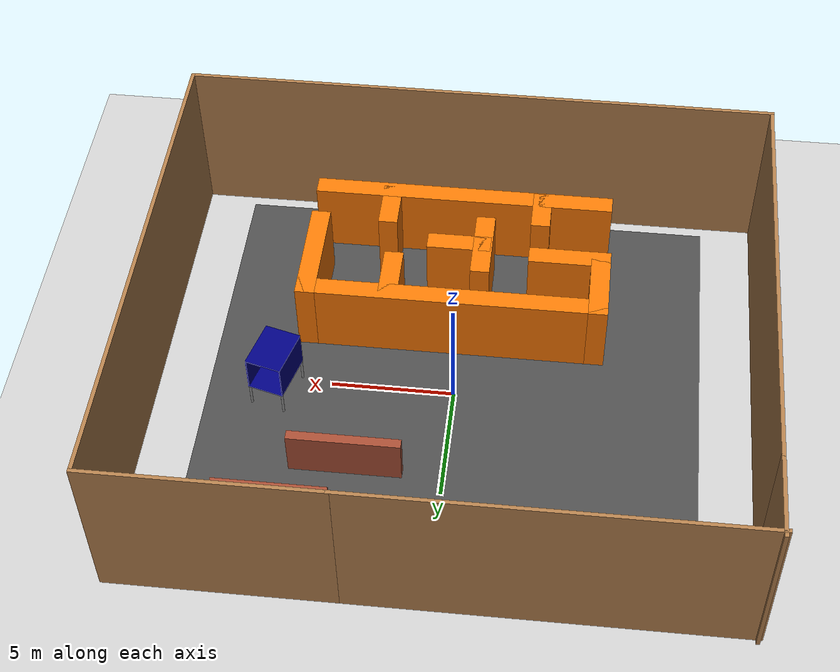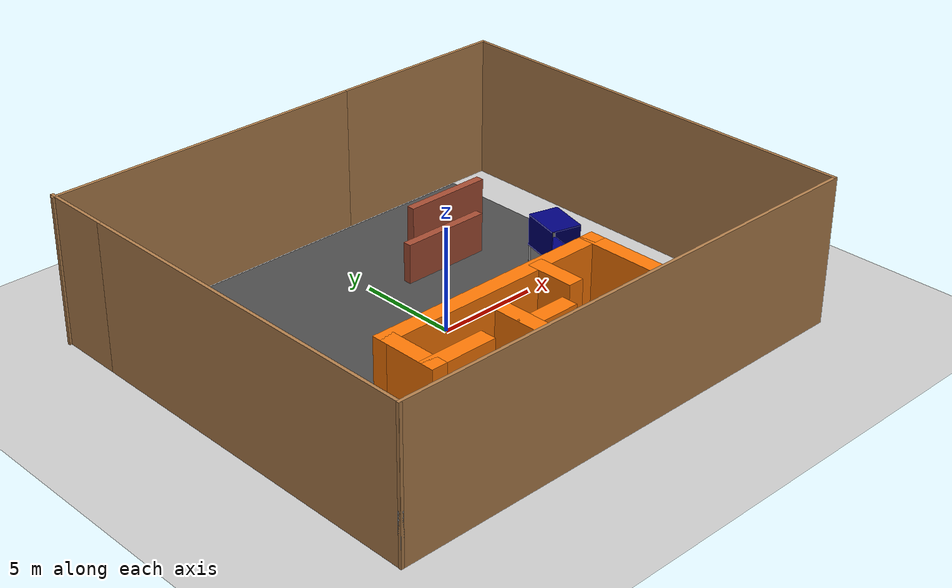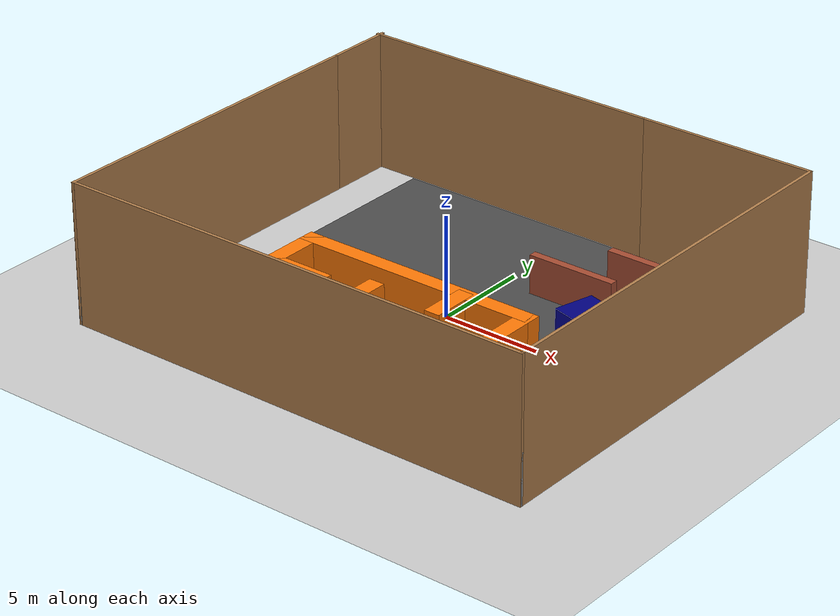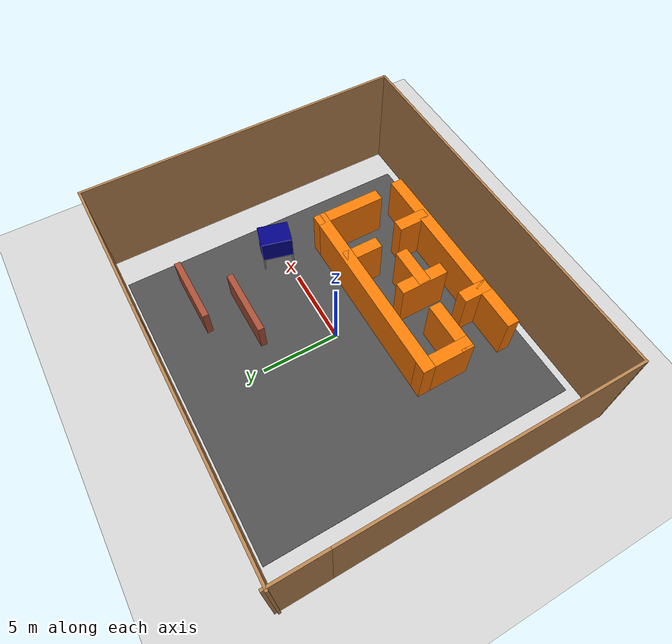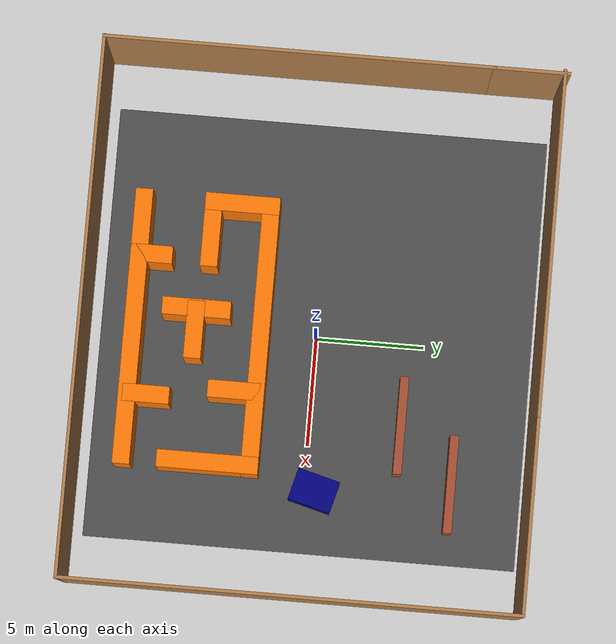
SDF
<sdf version="1.6">
 <world name="default">
  <light name="sun" type="directional">
   <pose>0 0 10 0 -0 0</pose>
   <diffuse>0.8 0.8 0.8 1</diffuse>
   <specular>0.2 0.2 0.2 1</specular>
   <attenuation>
    <range>1000</range>
    <constant>0.9</constant>
    <linear>0.01</linear>
    <quadratic>0.001</quadratic>
   </attenuation>
   <direction>-0.5 0.1 -0.9</direction>
  </light>
  <model name="ground_plane">
   <static>1</static>
   <link name="link">
    <collision name="collision">
     <geometry><plane><normal>0 0 1</normal><size>100 100</size></plane></geometry>
     <surface><friction><ode><mu>100</mu><mu2>50</mu2></ode></friction></surface>
    </collision>
    <visual name="visual">
     <cast_shadows>0</cast_shadows>
     <geometry><plane><normal>0 0 1</normal><size>100 100</size></plane></geometry>
     <material>
      <script><uri>file://media/materials/scripts/gazebo.material</uri><name>Gazebo/Grey</name></script>
     </material>
    </visual>
   </link>
  </model>
  <model name="asphalt_plane">
   <static>1</static>
   <link name="link">
    <collision name="collision"><geometry><box><size>20 20 0.1</size></box></geometry></collision>
    <visual name="visual">
     <cast_shadows>0</cast_shadows>
     <geometry><box><size>20 20 0.1</size></box></geometry>
     <material>
      <script>
       <uri>model://asphalt_plane/materials/scripts</uri>
       <uri>model://asphalt_plane/materials/textures</uri>
       <name>vrc/asphalt</name>
      </script>
     </material>
    </visual>
   </link>
  </model>
  <physics name="default_physics" default="0" type="ode">
   <ode>
    <solver>
     <type>quick</type>
     <iters>10</iters>
     <sor>1.3</sor>
     <use_dynamic_moi_rescaling>0</use_dynamic_moi_rescaling>
    </solver>
    <constraints>
     <cfm>0</cfm>
     <erp>0.2</erp>
     <contact_max_correcting_vel>100</contact_max_correcting_vel>
     <contact_surface_layer>0.001</contact_surface_layer>
    </constraints>
   </ode>
   <max_step_size>0.004</max_step_size>
   <real_time_factor>1</real_time_factor>
   <real_time_update_rate>250</real_time_update_rate>
  </physics>
  <gravity>0 0 -9.8066</gravity>
  <magnetic_field>6e-06 2.3e-05 -4.2e-05</magnetic_field>
  <atmosphere type="adiabatic"/>
  <scene><ambient>0.4 0.4 0.4 1</ambient><background>0.7 0.7 0.7 1</background><shadows>1</shadows></scene>
  <spherical_coordinates>
   <surface_model>EARTH_WGS84</surface_model>
   <latitude_deg>0</latitude_deg>
   <longitude_deg>0</longitude_deg>
   <elevation>0</elevation>
   <heading_deg>0</heading_deg>
  </spherical_coordinates>
  <model name="A_walls">
   <pose>3.82989 4.22347 0 0 -0 0</pose>
   <link name="Wall_1">
    <collision name="Wall_1_Collision">
     <geometry><box><size>4.5 0.4 2</size></box></geometry>
     <pose>0 0 1 0 -0 0</pose>
    </collision>
    <visual name="Wall_1_Visual">
     <pose>0 0 1 0 -0 0</pose>
     <geometry><box><size>4.5 0.4 2</size></box></geometry>
     <material>
      <script><uri>file://media/materials/scripts/gazebo.material</uri><name>Gazebo/Bricks</name></script>
      <ambient>1 1 1 1</ambient>
     </material>
     <meta><layer>0</layer></meta>
    </visual>
   </link>
   <link name="Wall_2">
    <collision name="Wall_2_Collision">
     <geometry><box><size>4.5 0.4 2</size></box></geometry>
     <pose>0 0 1 0 -0 0</pose>
    </collision>
    <visual name="Wall_2_Visual">
     <pose>0 0 1 0 -0 0</pose>
     <geometry><box><size>4.5 0.4 2</size></box></geometry>
     <material>
      <script><uri>file://media/materials/scripts/gazebo.material</uri><name>Gazebo/Bricks</name></script>
      <ambient>1 1 1 1</ambient>
     </material>
     <meta><layer>0</layer></meta>
    </visual>
    <pose>2.5 2.5 0 0 -0 0</pose>
   </link>
   <static>1</static>
  </model>
  <model name="B_tube">
   <link name="link_0">
    <inertial>
     <mass>1</mass>
     <inertia><ixx>0.145833</ixx><ixy>0</ixy><ixz>0</ixz><iyy>0.145833</iyy><iyz>0</iyz><izz>0.125</izz></inertia>
    </inertial>
    <pose>-0.7 -0.95 -0.645 0 -0 0</pose>
    <visual name="visual">
     <geometry><cylinder><radius>0.05</radius><length>1</length></cylinder></geometry>
     <material>
      <lighting>1</lighting>
      <script><uri>file://media/materials/scripts/gazebo.material</uri><name>Gazebo/Grey</name></script>
      <shader type="vertex"><normal_map>__default__</normal_map></shader>
      <ambient>0.3 0.3 0.3 1</ambient>
      <diffuse>0.7 0.7 0.7 1</diffuse>
      <specular>0.01 0.01 0.01 1</specular>
      <emissive>0 0 0 1</emissive>
     </material>
    </visual>
    <collision name="collision">
     <geometry><cylinder><radius>0.05</radius><length>1</length></cylinder></geometry>
     <surface>
      <friction>
       <ode><mu>1</mu><mu2>1</mu2><fdir1>0 0 0</fdir1><slip1>0</slip1><slip2>0</slip2></ode>
       <torsional>
        <coefficient>1</coefficient>
        <patch_radius>0</patch_radius>
        <surface_radius>0</surface_radius>
        <use_patch_radius>1</use_patch_radius>
        <ode><slip>0</slip></ode>
       </torsional>
      </friction>
      <bounce><restitution_coefficient>0</restitution_coefficient><threshold>1e+06</threshold></bounce>
      <contact>
       <collide_without_contact>0</collide_without_contact>
       <collide_without_contact_bitmask>1</collide_without_contact_bitmask>
       <collide_bitmask>1</collide_bitmask>
       <ode>
        <soft_cfm>0</soft_cfm>
        <soft_erp>0.2</soft_erp>
        <kp>1e+13</kp>
        <kd>1</kd>
        <max_vel>0.01</max_vel>
        <min_depth>0</min_depth>
       </ode>
       <bullet>
        <split_impulse>1</split_impulse>
        <split_impulse_penetration_threshold>-0.01</split_impulse_penetration_threshold>
        <soft_cfm>0</soft_cfm>
        <soft_erp>0.2</soft_erp>
        <kp>1e+13</kp>
        <kd>1</kd>
       </bullet>
      </contact>
     </surface>
    </collision>
   </link>
   <link name="link_0_clone">
    <inertial>
     <mass>1</mass>
     <inertia><ixx>0.145833</ixx><ixy>0</ixy><ixz>0</ixz><iyy>0.145833</iyy><iyz>0</iyz><izz>0.125</izz></inertia>
    </inertial>
    <pose>0.7 -0.95 -0.645 0 -0 0</pose>
    <visual name="visual">
     <geometry><cylinder><radius>0.05</radius><length>1</length></cylinder></geometry>
     <material>
      <lighting>1</lighting>
      <script><uri>file://media/materials/scripts/gazebo.material</uri><name>Gazebo/Grey</name></script>
      <shader type="vertex"><normal_map>__default__</normal_map></shader>
      <ambient>0.3 0.3 0.3 1</ambient>
      <diffuse>0.7 0.7 0.7 1</diffuse>
      <specular>0.01 0.01 0.01 1</specular>
      <emissive>0 0 0 1</emissive>
     </material>
    </visual>
    <collision name="collision">
     <geometry><cylinder><radius>0.05</radius><length>1</length></cylinder></geometry>
     <surface>
      <friction>
       <ode><mu>1</mu><mu2>1</mu2><fdir1>0 0 0</fdir1><slip1>0</slip1><slip2>0</slip2></ode>
       <torsional>
        <coefficient>1</coefficient>
        <patch_radius>0</patch_radius>
        <surface_radius>0</surface_radius>
        <use_patch_radius>1</use_patch_radius>
        <ode><slip>0</slip></ode>
       </torsional>
      </friction>
      <bounce><restitution_coefficient>0</restitution_coefficient><threshold>1e+06</threshold></bounce>
      <contact>
       <collide_without_contact>0</collide_without_contact>
       <collide_without_contact_bitmask>1</collide_without_contact_bitmask>
       <collide_bitmask>1</collide_bitmask>
       <ode>
        <soft_cfm>0</soft_cfm>
        <soft_erp>0.2</soft_erp>
        <kp>1e+13</kp>
        <kd>1</kd>
        <max_vel>0.01</max_vel>
        <min_depth>0</min_depth>
       </ode>
       <bullet>
        <split_impulse>1</split_impulse>
        <split_impulse_penetration_threshold>-0.01</split_impulse_penetration_threshold>
        <soft_cfm>0</soft_cfm>
        <soft_erp>0.2</soft_erp>
        <kp>1e+13</kp>
        <kd>1</kd>
       </bullet>
      </contact>
     </surface>
    </collision>
   </link>
   <link name="link_0_clone_0">
    <inertial>
     <mass>1</mass>
     <inertia><ixx>0.145833</ixx><ixy>0</ixy><ixz>0</ixz><iyy>0.145833</iyy><iyz>0</iyz><izz>0.125</izz></inertia>
    </inertial>
    <pose>-0.7 0.95 -0.645 0 -0 0</pose>
    <visual name="visual">
     <geometry><cylinder><radius>0.05</radius><length>1</length></cylinder></geometry>
     <material>
      <lighting>1</lighting>
      <script><uri>file://media/materials/scripts/gazebo.material</uri><name>Gazebo/Grey</name></script>
      <shader type="vertex"><normal_map>__default__</normal_map></shader>
      <ambient>0.3 0.3 0.3 1</ambient>
      <diffuse>0.7 0.7 0.7 1</diffuse>
      <specular>0.01 0.01 0.01 1</specular>
      <emissive>0 0 0 1</emissive>
     </material>
    </visual>
    <collision name="collision">
     <geometry><cylinder><radius>0.05</radius><length>1</length></cylinder></geometry>
     <surface>
      <friction>
       <ode><mu>1</mu><mu2>1</mu2><fdir1>0 0 0</fdir1><slip1>0</slip1><slip2>0</slip2></ode>
       <torsional>
        <coefficient>1</coefficient>
        <patch_radius>0</patch_radius>
        <surface_radius>0</surface_radius>
        <use_patch_radius>1</use_patch_radius>
        <ode><slip>0</slip></ode>
       </torsional>
      </friction>
      <bounce><restitution_coefficient>0</restitution_coefficient><threshold>1e+06</threshold></bounce>
      <contact>
       <collide_without_contact>0</collide_without_contact>
       <collide_without_contact_bitmask>1</collide_without_contact_bitmask>
       <collide_bitmask>1</collide_bitmask>
       <ode>
        <soft_cfm>0</soft_cfm>
        <soft_erp>0.2</soft_erp>
        <kp>1e+13</kp>
        <kd>1</kd>
        <max_vel>0.01</max_vel>
        <min_depth>0</min_depth>
       </ode>
       <bullet>
        <split_impulse>1</split_impulse>
        <split_impulse_penetration_threshold>-0.01</split_impulse_penetration_threshold>
        <soft_cfm>0</soft_cfm>
        <soft_erp>0.2</soft_erp>
        <kp>1e+13</kp>
        <kd>1</kd>
       </bullet>
      </contact>
     </surface>
    </collision>
   </link>
   <link name="link_0_clone_1">
    <inertial>
     <mass>1</mass>
     <inertia><ixx>0.145833</ixx><ixy>0</ixy><ixz>0</ixz><iyy>0.145833</iyy><iyz>0</iyz><izz>0.125</izz></inertia>
    </inertial>
    <pose>0.7 0.95 -0.645 0 -0 0</pose>
    <visual name="visual">
     <geometry><cylinder><radius>0.05</radius><length>1</length></cylinder></geometry>
     <material>
      <lighting>1</lighting>
      <script><uri>file://media/materials/scripts/gazebo.material</uri><name>Gazebo/Grey</name></script>
      <shader type="vertex"><normal_map>__default__</normal_map></shader>
      <ambient>0.3 0.3 0.3 1</ambient>
      <diffuse>0.7 0.7 0.7 1</diffuse>
      <specular>0.01 0.01 0.01 1</specular>
      <emissive>0 0 0 1</emissive>
     </material>
    </visual>
    <collision name="collision">
     <geometry><cylinder><radius>0.05</radius><length>1</length></cylinder></geometry>
     <surface>
      <friction>
       <ode><mu>1</mu><mu2>1</mu2><fdir1>0 0 0</fdir1><slip1>0</slip1><slip2>0</slip2></ode>
       <torsional>
        <coefficient>1</coefficient>
        <patch_radius>0</patch_radius>
        <surface_radius>0</surface_radius>
        <use_patch_radius>1</use_patch_radius>
        <ode><slip>0</slip></ode>
       </torsional>
      </friction>
      <bounce><restitution_coefficient>0</restitution_coefficient><threshold>1e+06</threshold></bounce>
      <contact>
       <collide_without_contact>0</collide_without_contact>
       <collide_without_contact_bitmask>1</collide_without_contact_bitmask>
       <collide_bitmask>1</collide_bitmask>
       <ode>
        <soft_cfm>0</soft_cfm>
        <soft_erp>0.2</soft_erp>
        <kp>1e+13</kp>
        <kd>1</kd>
        <max_vel>0.01</max_vel>
        <min_depth>0</min_depth>
       </ode>
       <bullet>
        <split_impulse>1</split_impulse>
        <split_impulse_penetration_threshold>-0.01</split_impulse_penetration_threshold>
        <soft_cfm>0</soft_cfm>
        <soft_erp>0.2</soft_erp>
        <kp>1e+13</kp>
        <kd>1</kd>
       </bullet>
      </contact>
     </surface>
    </collision>
   </link>
   <link name="link_1">
    <inertial>
     <mass>1</mass>
     <inertia>
      <ixx>0.166667</ixx>
      <ixy>0</ixy>
      <ixz>0</ixz>
      <iyy>0.166667</iyy>
      <iyz>0</iyz>
      <izz>0.166667</izz>
     </inertia>
    </inertial>
    <pose>-0 -0 -0.125 0 -0 0</pose>
    <visual name="visual">
     <geometry><box><size>1.5 2 0.04</size></box></geometry>
     <material>
      <lighting>1</lighting>
      <script><uri>file://media/materials/scripts/gazebo.material</uri><name>Gazebo/Grey</name></script>
      <shader type="vertex"><normal_map>__default__</normal_map></shader>
      <ambient>0 0 0.5 1</ambient>
      <diffuse>0.7 0.7 0.7 1</diffuse>
      <specular>0.01 0.01 0.01 1</specular>
      <emissive>0 0 0 1</emissive>
     </material>
    </visual>
    <collision name="collision">
     <geometry><box><size>1.5 2 0.04</size></box></geometry>
     <surface>
      <friction>
       <ode><mu>1</mu><mu2>1</mu2><fdir1>0 0 0</fdir1><slip1>0</slip1><slip2>0</slip2></ode>
       <torsional>
        <coefficient>1</coefficient>
        <patch_radius>0</patch_radius>
        <surface_radius>0</surface_radius>
        <use_patch_radius>1</use_patch_radius>
        <ode><slip>0</slip></ode>
       </torsional>
      </friction>
      <bounce><restitution_coefficient>0</restitution_coefficient><threshold>1e+06</threshold></bounce>
      <contact>
       <collide_without_contact>0</collide_without_contact>
       <collide_without_contact_bitmask>1</collide_without_contact_bitmask>
       <collide_bitmask>1</collide_bitmask>
       <ode>
        <soft_cfm>0</soft_cfm>
        <soft_erp>0.2</soft_erp>
        <kp>1e+13</kp>
        <kd>1</kd>
        <max_vel>0.01</max_vel>
        <min_depth>0</min_depth>
       </ode>
       <bullet>
        <split_impulse>1</split_impulse>
        <split_impulse_penetration_threshold>-0.01</split_impulse_penetration_threshold>
        <soft_cfm>0</soft_cfm>
        <soft_erp>0.2</soft_erp>
        <kp>1e+13</kp>
        <kd>1</kd>
       </bullet>
      </contact>
     </surface>
    </collision>
   </link>
   <link name="link_1_clone">
    <inertial>
     <mass>1</mass>
     <inertia>
      <ixx>0.166667</ixx>
      <ixy>0</ixy>
      <ixz>0</ixz>
      <iyy>0.166667</iyy>
      <iyz>0</iyz>
      <izz>0.166667</izz>
     </inertia>
    </inertial>
    <pose>0 -0 1.415 0 -0 0</pose>
    <visual name="visual">
     <geometry><box><size>1.5 2 0.04</size></box></geometry>
     <material>
      <lighting>1</lighting>
      <script><uri>file://media/materials/scripts/gazebo.material</uri><name>Gazebo/Grey</name></script>
      <shader type="vertex"><normal_map>__default__</normal_map></shader>
      <ambient>0 0 0.5 1</ambient>
      <diffuse>0.7 0.7 0.7 1</diffuse>
      <specular>0.01 0.01 0.01 1</specular>
      <emissive>0 0 0 1</emissive>
     </material>
    </visual>
    <collision name="collision">
     <geometry><box><size>1.5 2 0.04</size></box></geometry>
     <surface>
      <friction>
       <ode><mu>1</mu><mu2>1</mu2><fdir1>0 0 0</fdir1><slip1>0</slip1><slip2>0</slip2></ode>
       <torsional>
        <coefficient>1</coefficient>
        <patch_radius>0</patch_radius>
        <surface_radius>0</surface_radius>
        <use_patch_radius>1</use_patch_radius>
        <ode><slip>0</slip></ode>
       </torsional>
      </friction>
      <bounce><restitution_coefficient>0</restitution_coefficient><threshold>1e+06</threshold></bounce>
      <contact>
       <collide_without_contact>0</collide_without_contact>
       <collide_without_contact_bitmask>1</collide_without_contact_bitmask>
       <collide_bitmask>1</collide_bitmask>
       <ode>
        <soft_cfm>0</soft_cfm>
        <soft_erp>0.2</soft_erp>
        <kp>1e+13</kp>
        <kd>1</kd>
        <max_vel>0.01</max_vel>
        <min_depth>0</min_depth>
       </ode>
       <bullet>
        <split_impulse>1</split_impulse>
        <split_impulse_penetration_threshold>-0.01</split_impulse_penetration_threshold>
        <soft_cfm>0</soft_cfm>
        <soft_erp>0.2</soft_erp>
        <kp>1e+13</kp>
        <kd>1</kd>
       </bullet>
      </contact>
     </surface>
    </collision>
   </link>
   <link name="link_1_clone_0">
    <inertial>
     <mass>1</mass>
     <inertia>
      <ixx>0.166667</ixx>
      <ixy>0</ixy>
      <ixz>0</ixz>
      <iyy>0.166667</iyy>
      <iyz>0</iyz>
      <izz>0.166667</izz>
     </inertia>
    </inertial>
    <pose>-0.73 0 0.645 0 1.57 0</pose>
    <visual name="visual">
     <geometry><box><size>1.5 2 0.04</size></box></geometry>
     <material>
      <lighting>1</lighting>
      <script><uri>file://media/materials/scripts/gazebo.material</uri><name>Gazebo/Grey</name></script>
      <shader type="vertex"><normal_map>__default__</normal_map></shader>
      <ambient>0 0 0.5 1</ambient>
      <diffuse>0.7 0.7 0.7 1</diffuse>
      <specular>0.01 0.01 0.01 1</specular>
      <emissive>0 0 0 1</emissive>
     </material>
    </visual>
    <collision name="collision">
     <geometry><box><size>1.5 2 0.04</size></box></geometry>
     <surface>
      <friction>
       <ode><mu>1</mu><mu2>1</mu2><fdir1>0 0 0</fdir1><slip1>0</slip1><slip2>0</slip2></ode>
       <torsional>
        <coefficient>1</coefficient>
        <patch_radius>0</patch_radius>
        <surface_radius>0</surface_radius>
        <use_patch_radius>1</use_patch_radius>
        <ode><slip>0</slip></ode>
       </torsional>
      </friction>
      <bounce><restitution_coefficient>0</restitution_coefficient><threshold>1e+06</threshold></bounce>
      <contact>
       <collide_without_contact>0</collide_without_contact>
       <collide_without_contact_bitmask>1</collide_without_contact_bitmask>
       <collide_bitmask>1</collide_bitmask>
       <ode>
        <soft_cfm>0</soft_cfm>
        <soft_erp>0.2</soft_erp>
        <kp>1e+13</kp>
        <kd>1</kd>
        <max_vel>0.01</max_vel>
        <min_depth>0</min_depth>
       </ode>
       <bullet>
        <split_impulse>1</split_impulse>
        <split_impulse_penetration_threshold>-0.01</split_impulse_penetration_threshold>
        <soft_cfm>0</soft_cfm>
        <soft_erp>0.2</soft_erp>
        <kp>1e+13</kp>
        <kd>1</kd>
       </bullet>
      </contact>
     </surface>
    </collision>
   </link>
   <link name="link_1_clone_0_clone">
    <inertial>
     <mass>1</mass>
     <inertia>
      <ixx>0.166667</ixx>
      <ixy>0</ixy>
      <ixz>0</ixz>
      <iyy>0.166667</iyy>
      <iyz>0</iyz>
      <izz>0.166667</izz>
     </inertia>
    </inertial>
    <pose>0.73 0 0.645 0 1.57 0</pose>
    <visual name="visual">
     <geometry><box><size>1.5 2 0.04</size></box></geometry>
     <material>
      <lighting>1</lighting>
      <script><uri>file://media/materials/scripts/gazebo.material</uri><name>Gazebo/Grey</name></script>
      <shader type="vertex"><normal_map>__default__</normal_map></shader>
      <ambient>0 0 0.5 1</ambient>
      <diffuse>0.7 0.7 0.7 1</diffuse>
      <specular>0.01 0.01 0.01 1</specular>
      <emissive>0 0 0 1</emissive>
     </material>
    </visual>
    <collision name="collision">
     <geometry><box><size>1.5 2 0.04</size></box></geometry>
     <surface>
      <friction>
       <ode><mu>1</mu><mu2>1</mu2><fdir1>0 0 0</fdir1><slip1>0</slip1><slip2>0</slip2></ode>
       <torsional>
        <coefficient>1</coefficient>
        <patch_radius>0</patch_radius>
        <surface_radius>0</surface_radius>
        <use_patch_radius>1</use_patch_radius>
        <ode><slip>0</slip></ode>
       </torsional>
      </friction>
      <bounce><restitution_coefficient>0</restitution_coefficient><threshold>1e+06</threshold></bounce>
      <contact>
       <collide_without_contact>0</collide_without_contact>
       <collide_without_contact_bitmask>1</collide_without_contact_bitmask>
       <collide_bitmask>1</collide_bitmask>
       <ode>
        <soft_cfm>0</soft_cfm>
        <soft_erp>0.2</soft_erp>
        <kp>1e+13</kp>
        <kd>1</kd>
        <max_vel>0.01</max_vel>
        <min_depth>0</min_depth>
       </ode>
       <bullet>
        <split_impulse>1</split_impulse>
        <split_impulse_penetration_threshold>-0.01</split_impulse_penetration_threshold>
        <soft_cfm>0</soft_cfm>
        <soft_erp>0.2</soft_erp>
        <kp>1e+13</kp>
        <kd>1</kd>
       </bullet>
      </contact>
     </surface>
    </collision>
   </link>
   <joint name="link_1_JOINT_0" type="fixed">
    <parent>link_1</parent>
    <child>link_1_clone_0_clone</child>
    <physics>
     <ode><limit><cfm>0</cfm><erp>0.2</erp></limit><suspension><cfm>0</cfm><erp>0.2</erp></suspension></ode>
    </physics>
   </joint>
   <joint name="link_1_JOINT_1" type="fixed">
    <parent>link_1</parent>
    <child>link_1_clone_0</child>
    <physics>
     <ode><limit><cfm>0</cfm><erp>0.2</erp></limit><suspension><cfm>0</cfm><erp>0.2</erp></suspension></ode>
    </physics>
   </joint>
   <joint name="link_1_JOINT_2" type="fixed">
    <parent>link_1</parent>
    <child>link_1_clone</child>
    <physics>
     <ode><limit><cfm>0</cfm><erp>0.2</erp></limit><suspension><cfm>0</cfm><erp>0.2</erp></suspension></ode>
    </physics>
   </joint>
   <joint name="link_1_JOINT_4" type="fixed">
    <parent>link_1</parent>
    <child>link_0_clone_0</child>
    <physics>
     <ode><limit><cfm>0</cfm><erp>0.2</erp></limit><suspension><cfm>0</cfm><erp>0.2</erp></suspension></ode>
    </physics>
   </joint>
   <joint name="link_1_JOINT_5" type="fixed">
    <parent>link_1</parent>
    <child>link_0_clone_1</child>
    <physics>
     <ode><limit><cfm>0</cfm><erp>0.2</erp></limit><suspension><cfm>0</cfm><erp>0.2</erp></suspension></ode>
    </physics>
   </joint>
   <joint name="link_1_JOINT_6" type="fixed">
    <parent>link_1</parent>
    <child>link_0_clone</child>
    <physics>
     <ode><limit><cfm>0</cfm><erp>0.2</erp></limit><suspension><cfm>0</cfm><erp>0.2</erp></suspension></ode>
    </physics>
   </joint>
   <joint name="link_1_JOINT_7" type="fixed">
    <parent>link_1</parent>
    <child>link_0</child>
    <physics>
     <ode><limit><cfm>0</cfm><erp>0.2</erp></limit><suspension><cfm>0</cfm><erp>0.2</erp></suspension></ode>
    </physics>
   </joint>
   <static>0</static>
   <pose>7.17129 0.496527 1.1951 7e-06 -0.00012 2.88175</pose>
  </model>
  <model name="C_maze">
   <pose>0.338986 -5.44527 0 0 -0 0</pose>
   <link name="Wall_0">
    <collision name="Wall_0_Collision">
     <geometry><box><size>12.65 0.8 3.2</size></box></geometry>
     <pose>0 0 1.6 0 -0 0</pose>
    </collision>
    <visual name="Wall_0_Visual">
     <pose>0 0 1.6 0 -0 0</pose>
     <geometry><box><size>12.65 0.8 3.2</size></box></geometry>
     <material>
      <script><uri>file://media/materials/scripts/gazebo.material</uri><name>Gazebo/Grey</name></script>
      <ambient>0.996078 0.47451 0.0196078 1</ambient>
     </material>
     <meta><layer>0</layer></meta>
    </visual>
    <pose>0.035 -2.92505 0 0 -0 0</pose>
   </link>
   <link name="Wall_11">
    <collision name="Wall_11_Collision">
     <geometry><box><size>1.90044 0.8 3.2</size></box></geometry>
     <pose>0 0 1.6 0 -0 0</pose>
    </collision>
    <visual name="Wall_11_Visual">
     <pose>0 0 1.6 0 -0 0</pose>
     <geometry><box><size>1.90044 0.8 3.2</size></box></geometry>
     <material>
      <script><uri>file://media/materials/scripts/gazebo.material</uri><name>Gazebo/Grey</name></script>
      <ambient>0.996078 0.47451 0.0196078 1</ambient>
     </material>
     <meta><layer>0</layer></meta>
    </visual>
    <pose>-3.325 -2.34205 0 0 -0 1.5708</pose>
   </link>
   <link name="Wall_13">
    <collision name="Wall_13_Collision">
     <geometry><box><size>3.15032 0.8 3.2</size></box></geometry>
     <pose>0 0 1.6 0 -0 0</pose>
    </collision>
    <visual name="Wall_13_Visual">
     <pose>0 0 1.6 0 -0 0</pose>
     <geometry><box><size>3.15032 0.8 3.2</size></box></geometry>
     <material>
      <script><uri>file://media/materials/scripts/gazebo.material</uri><name>Gazebo/Grey</name></script>
      <ambient>0.996078 0.47451 0.0196078 1</ambient>
     </material>
     <meta><layer>0</layer></meta>
    </visual>
    <pose>-1.017 -0.096053 0 0 -0 -1.5708</pose>
   </link>
   <link name="Wall_15">
    <collision name="Wall_15_Collision">
     <geometry><box><size>2.65022 0.8 3.2</size></box></geometry>
     <pose>0 0 1.6 0 -0 0</pose>
    </collision>
    <visual name="Wall_15_Visual">
     <pose>0 0 1.6 0 -0 0</pose>
     <geometry><box><size>2.65022 0.8 3.2</size></box></geometry>
     <material>
      <script><uri>file://media/materials/scripts/gazebo.material</uri><name>Gazebo/Grey</name></script>
      <ambient>0.996078 0.47451 0.0196078 1</ambient>
     </material>
     <meta><layer>0</layer></meta>
    </visual>
    <pose>-0.022 -0.111053 0 0 -0 0</pose>
   </link>
   <link name="Wall_17">
    <collision name="Wall_17_Collision">
     <geometry><box><size>2.40025 0.8 3.2</size></box></geometry>
     <pose>0 0 1.6 0 -0 0</pose>
    </collision>
    <visual name="Wall_17_Visual">
     <pose>0 0 1.6 0 -0 0</pose>
     <geometry><box><size>2.40025 0.8 3.2</size></box></geometry>
     <material>
      <script><uri>file://media/materials/scripts/gazebo.material</uri><name>Gazebo/Grey</name></script>
      <ambient>0.996078 0.47451 0.0196078 1</ambient>
     </material>
     <meta><layer>0</layer></meta>
    </visual>
    <pose>2.604 1.92295 0 0 -0 -1.5708</pose>
   </link>
   <link name="Wall_19">
    <collision name="Wall_19_Collision">
     <geometry><box><size>2.14985 0.8 3.2</size></box></geometry>
     <pose>0 0 1.6 0 -0 0</pose>
    </collision>
    <visual name="Wall_19_Visual">
     <pose>0 0 1.6 0 -0 0</pose>
     <geometry><box><size>2.14985 0.8 3.2</size></box></geometry>
     <material>
      <script><uri>file://media/materials/scripts/gazebo.material</uri><name>Gazebo/Grey</name></script>
      <ambient>0.996078 0.47451 0.0196078 1</ambient>
     </material>
     <meta><layer>0</layer></meta>
    </visual>
    <pose>3.093 -2.05905 0 0 -0 1.5708</pose>
   </link>
   <link name="Wall_2">
    <collision name="Wall_2_Collision">
     <geometry><box><size>12.7201 0.8 3.2</size></box></geometry>
     <pose>0 0 1.6 0 -0 0</pose>
    </collision>
    <visual name="Wall_2_Visual">
     <pose>0 0 1.6 0 -0 0</pose>
     <geometry><box><size>12.7201 0.8 3.2</size></box></geometry>
     <material>
      <script><uri>file://media/materials/scripts/gazebo.material</uri><name>Gazebo/Grey</name></script>
      <ambient>0.996078 0.47451 0.0196078 1</ambient>
     </material>
     <meta><layer>0</layer></meta>
    </visual>
    <pose>0 2.92495 0 0 -0 3.14159</pose>
   </link>
   <link name="Wall_22">
    <collision name="Wall_22_Collision">
     <geometry><box><size>4.65 0.8 3.2</size></box></geometry>
     <pose>0 0 1.6 0 -0 0</pose>
    </collision>
    <visual name="Wall_22_Visual">
     <pose>0 0 1.6 0 -0 0</pose>
     <geometry><box><size>4.65 0.8 3.2</size></box></geometry>
     <material>
      <script><uri>file://media/materials/scripts/gazebo.material</uri><name>Gazebo/Grey</name></script>
      <ambient>0.996078 0.47451 0.0196078 1</ambient>
     </material>
     <meta><layer>0</layer></meta>
    </visual>
    <pose>5.96 0.999947 0 0 -0 -1.5708</pose>
   </link>
   <link name="Wall_7">
    <collision name="Wall_7_Collision">
     <geometry><box><size>3.43521 0.8 3.2</size></box></geometry>
     <pose>0 0 1.6 0 -0 0</pose>
    </collision>
    <visual name="Wall_7_Visual">
     <pose>0 0 1.6 0 -0 0</pose>
     <geometry><box><size>3.43521 0.8 3.2</size></box></geometry>
     <material>
      <script><uri>file://media/materials/scripts/gazebo.material</uri><name>Gazebo/Grey</name></script>
      <ambient>0.996078 0.47451 0.0196078 1</ambient>
     </material>
     <meta><layer>0</layer></meta>
    </visual>
    <pose>-5.96 1.60745 0 0 -0 -1.5708</pose>
   </link>
   <link name="Wall_9">
    <collision name="Wall_9_Collision">
     <geometry><box><size>3.4 0.8 3.2</size></box></geometry>
     <pose>0 0 1.6 0 -0 0</pose>
    </collision>
    <visual name="Wall_9_Visual">
     <pose>0 0 1.6 0 -0 0</pose>
     <geometry><box><size>3.4 0.8 3.2</size></box></geometry>
     <material>
      <script><uri>file://media/materials/scripts/gazebo.material</uri><name>Gazebo/Grey</name></script>
      <ambient>0.996078 0.47451 0.0196078 1</ambient>
     </material>
     <meta><layer>0</layer></meta>
    </visual>
    <pose>-4.66 0.289947 0 0 -0 0</pose>
   </link>
   <static>1</static>
  </model>
  <model name="wall_all">
   <pose>-0.077336 -0.089089 0 0 -0 0</pose>
   <link name="Wall_10">
    <collision name="Wall_10_Collision">
     <geometry><box><size>17.75 0.15 7</size></box></geometry>
     <pose>0 0 3.5 0 -0 0</pose>
    </collision>
    <visual name="Wall_10_Visual">
     <pose>0 0 3.5 0 -0 0</pose>
     <geometry><box><size>17.75 0.15 7</size></box></geometry>
     <material>
      <script><uri>file://media/materials/scripts/gazebo.material</uri><name>Gazebo/Wood</name></script>
      <ambient>1 1 1 1</ambient>
     </material>
     <meta><layer>0</layer></meta>
    </visual>
    <pose>-12.115 -1.675 0 0 -0 1.5708</pose>
   </link>
   <link name="Wall_11">
    <collision name="Wall_11_Collision">
     <geometry><box><size>3.5 0.15 7</size></box></geometry>
     <pose>0 0 3.5 0 -0 0</pose>
    </collision>
    <visual name="Wall_11_Visual">
     <pose>0 0 3.5 0 -0 0</pose>
     <geometry><box><size>3.5 0.15 7</size></box></geometry>
     <material>
      <script><uri>file://media/materials/scripts/gazebo.material</uri><name>Gazebo/Wood</name></script>
      <ambient>1 1 1 1</ambient>
     </material>
     <meta><layer>0</layer></meta>
    </visual>
    <pose>-12.115 8.8 0 0 -0 1.5708</pose>
   </link>
   <link name="Wall_2">
    <collision name="Wall_2_Collision">
     <geometry><box><size>15.703 0.15 7</size></box></geometry>
     <pose>0 0 3.5 0 -0 0</pose>
    </collision>
    <visual name="Wall_2_Visual">
     <pose>0 0 3.5 0 -0 0</pose>
     <geometry><box><size>15.703 0.15 7</size></box></geometry>
     <material>
      <script><uri>file://media/materials/scripts/gazebo.material</uri><name>Gazebo/Wood</name></script>
      <ambient>1 1 1 1</ambient>
     </material>
     <meta><layer>0</layer></meta>
    </visual>
    <pose>-4.4485 10.297 0 0 -0 3.14159</pose>
   </link>
   <link name="Wall_5">
    <collision name="Wall_5_Collision">
     <geometry><box><size>9.04652 0.15 7</size></box></geometry>
     <pose>0 0 3.5 0 -0 0</pose>
    </collision>
    <visual name="Wall_5_Visual">
     <pose>0 0 3.5 0 -0 0</pose>
     <geometry><box><size>9.04652 0.15 7</size></box></geometry>
     <material>
      <script><uri>file://media/materials/scripts/gazebo.material</uri><name>Gazebo/Wood</name></script>
      <ambient>1 1 1 1</ambient>
     </material>
     <meta><layer>0</layer></meta>
    </visual>
    <pose>7.7765 10.297 0 0 -0 0</pose>
   </link>
   <link name="Wall_6">
    <collision name="Wall_6_Collision">
     <geometry><box><size>20.9219 0.15 7</size></box></geometry>
     <pose>0 0 3.5 0 -0 0</pose>
    </collision>
    <visual name="Wall_6_Visual">
     <pose>0 0 3.5 0 -0 0</pose>
     <geometry><box><size>20.9219 0.15 7</size></box></geometry>
     <material>
      <script><uri>file://media/materials/scripts/gazebo.material</uri><name>Gazebo/Wood</name></script>
      <ambient>1 1 1 1</ambient>
     </material>
     <meta><layer>0</layer></meta>
    </visual>
    <pose>12.225 -0.089 0 0 -0 -1.5708</pose>
   </link>
   <link name="Wall_7">
    <collision name="Wall_7_Collision">
     <geometry><box><size>0.15 0.15 2.5</size></box></geometry>
     <pose>0 0 1.25 0 -0 0</pose>
    </collision>
    <visual name="Wall_7_Visual">
     <pose>0 0 1.25 0 -0 0</pose>
     <geometry><box><size>0.15 0.15 2.5</size></box></geometry>
     <material>
      <script><uri>file://media/materials/scripts/gazebo.material</uri><name>Gazebo/Grey</name></script>
      <ambient>1 1 1 1</ambient>
     </material>
     <meta><layer>0</layer></meta>
    </visual>
    <pose>12.225 -10.475 0 0 -0 0</pose>
   </link>
   <link name="Wall_8">
    <collision name="Wall_8_Collision">
     <geometry><box><size>24.5 0.15 7</size></box></geometry>
     <pose>0 0 3.5 0 -0 0</pose>
    </collision>
    <visual name="Wall_8_Visual">
     <pose>0 0 3.5 0 -0 0</pose>
     <geometry><box><size>24.5 0.15 7</size></box></geometry>
     <material>
      <script><uri>file://media/materials/scripts/gazebo.material</uri><name>Gazebo/Wood</name></script>
      <ambient>1 1 1 1</ambient>
     </material>
     <meta><layer>0</layer></meta>
    </visual>
    <pose>0.049999 -10.475 0 0 -0 3.14159</pose>
   </link>
   <link name="Wall_9">
    <collision name="Wall_9_Collision">
     <geometry><box><size>0.16 0.15 2.5</size></box></geometry>
     <pose>0 0 1.25 0 -0 0</pose>
    </collision>
    <visual name="Wall_9_Visual">
     <pose>0 0 1.25 0 -0 0</pose>
     <geometry><box><size>0.16 0.15 2.5</size></box></geometry>
     <material>
      <script><uri>file://media/materials/scripts/gazebo.material</uri><name>Gazebo/Grey</name></script>
      <ambient>1 1 1 1</ambient>
     </material>
     <meta><layer>0</layer></meta>
    </visual>
    <pose>-12.12 -10.475 0 0 -0 0</pose>
   </link>
   <static>1</static>
  </model>
 </world>
</sdf>
